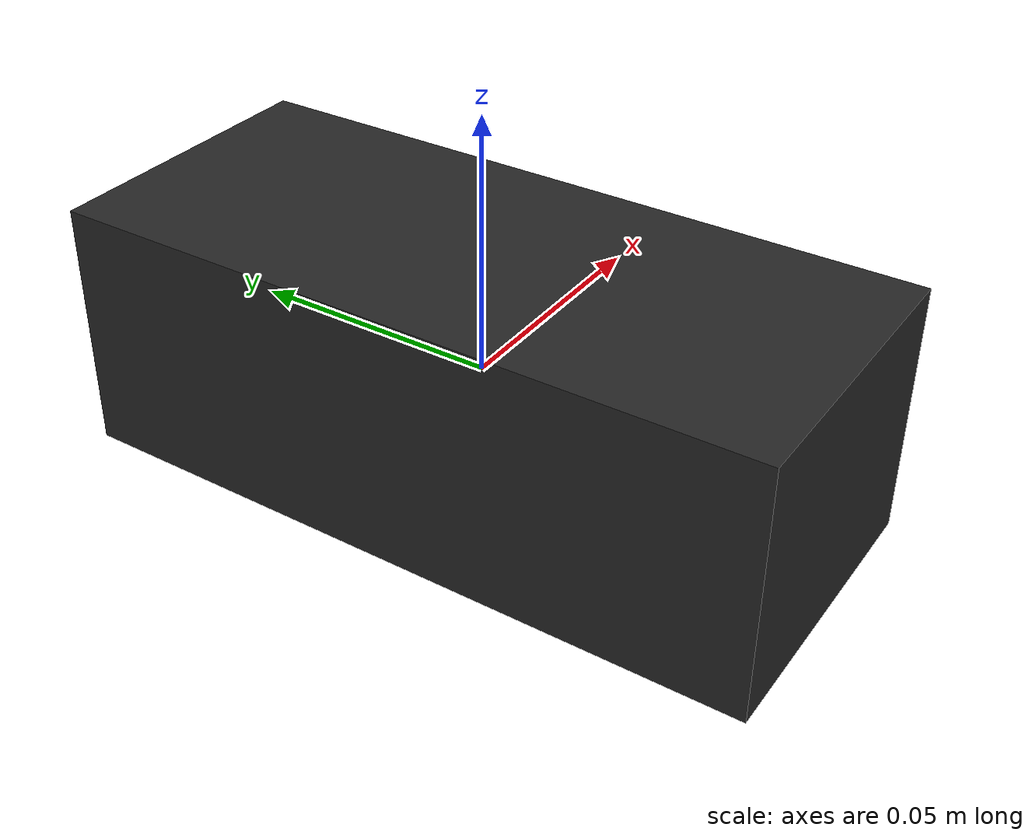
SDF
<?xml version="1.0"?>
<sdf version="1.8">
  <model name="observer_cam">
    <static>true</static>
    <link name="link">

      <visual name="marker">
        <geometry>
          <box><size>0.06 0.14 0.05</size></box>
        </geometry>
        <material>
          <ambient>0.1 0.1 0.1 1</ambient>
          <diffuse>0.15 0.15 0.15 1</diffuse>
        </material>
      </visual>

      <sensor name="cam" type="camera">
        <camera>
          <horizontal_fov>1.4</horizontal_fov>
          <image>
            <width>1280</width>
            <height>720</height>
            <format>R8G8B8</format>
          </image>
          <clip>
            <near>0.1</near>
            <far>100</far>
          </clip>
        </camera>
        <always_on>1</always_on>
        <update_rate>30</update_rate>
        <topic>observer/image</topic>
        <gz_frame_id>observer_cam</gz_frame_id>
      </sensor>
    </link>
  </model>
</sdf>
